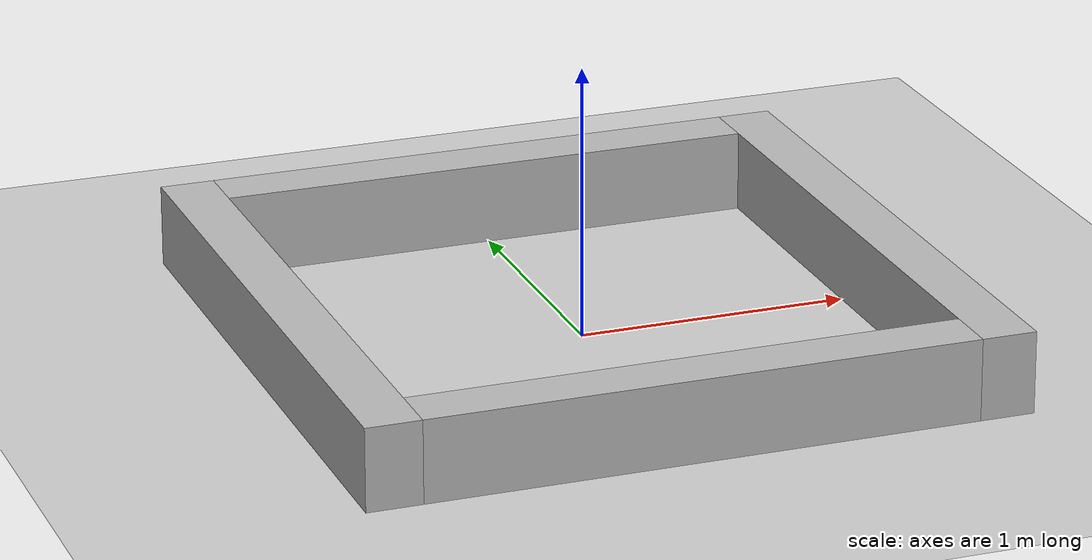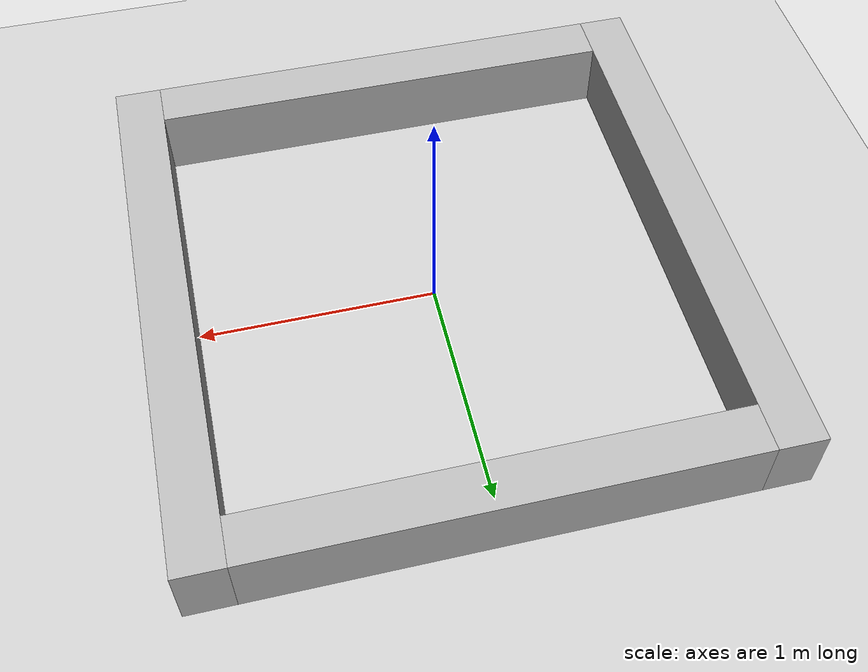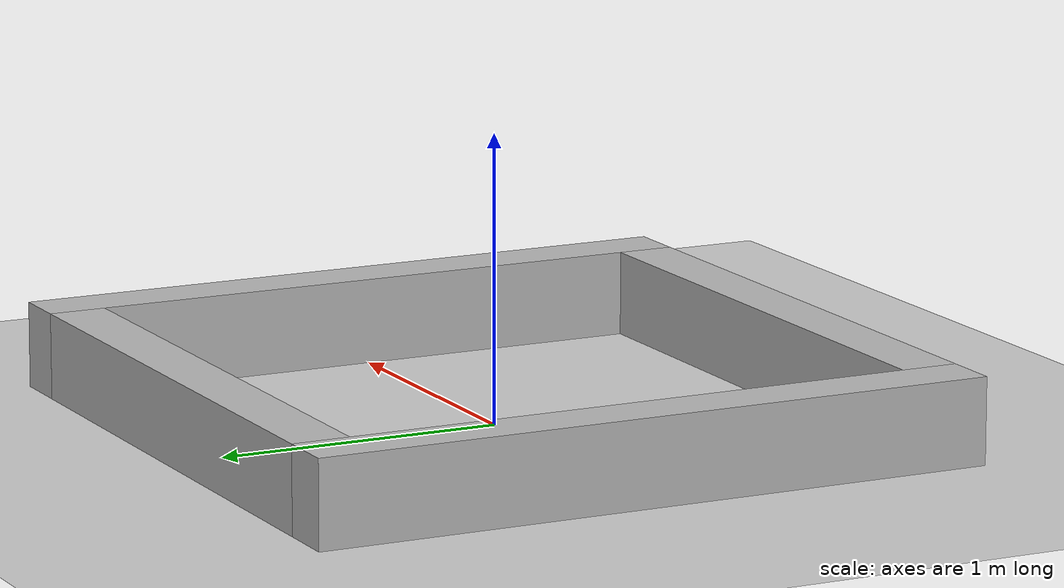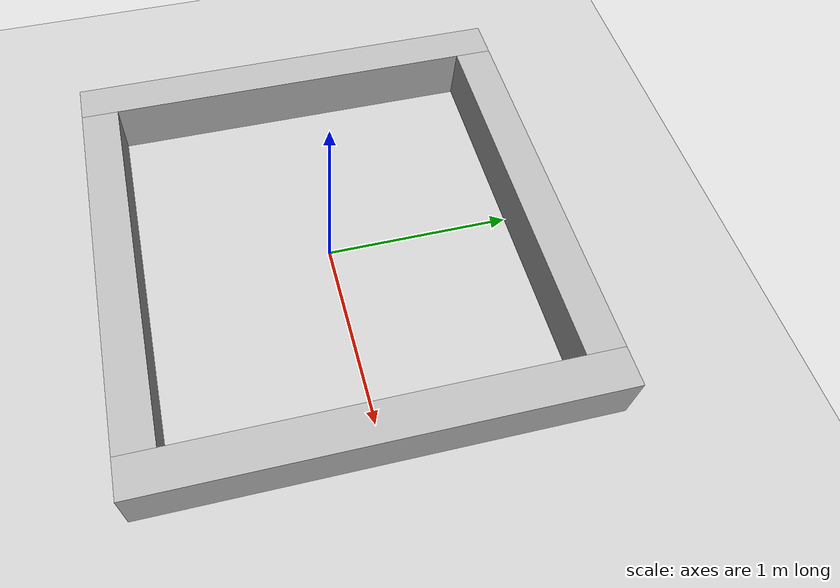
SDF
<?xml version="1.0"?>
<sdf version="1.6">
  <world name="default">

    <include>
      <uri>model://ground_plane</uri>
    </include>

    <include>
      <uri>model://sun</uri>
    </include>

    <scene>
      <shadows>false</shadows>
    </scene>

    <gui fullscreen='0'>
      <camera name='user_camera'>
        <pose frame=''>0.319654 -0.235002 9.29441 0 1.5138 0.009599</pose>
        <view_controller>orbit</view_controller>
        <projection_type>perspective</projection_type>
      </camera>
    </gui>

    <physics type="ode">
      <real_time_update_rate>1000.0</real_time_update_rate>
      <max_step_size>0.001</max_step_size>
      <real_time_factor>1</real_time_factor>
      <ode>
        <solver>
          <type>quick</type>
          <iters>150</iters>
          <precon_iters>0</precon_iters>
          <sor>1.400000</sor>
          <use_dynamic_moi_rescaling>1</use_dynamic_moi_rescaling>
        </solver>
        <constraints>
          <cfm>0.00001</cfm>
          <erp>0.2</erp>
          <contact_max_correcting_vel>2000.000000</contact_max_correcting_vel>
          <contact_surface_layer>0.01000</contact_surface_layer>
        </constraints>
      </ode>
    </physics>

    <model name="wall1">
      <pose>1.1 0 0.15 0 0 0</pose>
      <static>true</static>
      <link name="link">
      <visual name="visual">
        <geometry>
          <box><size>0.2 2.4 0.3</size></box>
        </geometry>
      </visual>
      <collision name="collision">
        <geometry>
          <box><size>0.2 2.4 0.3</size></box>
        </geometry>
      </collision>
      </link>
    </model>
    <model name="wall2">
      <pose>-1.1 0 0.15 0 0 0</pose>
      <static>true</static>
      <link name="link">
      <visual name="visual">
        <geometry>
          <box><size>0.2 2.4 0.3</size></box>
        </geometry>
      </visual>
      <collision name="collision">
        <geometry>
          <box><size>0.2 2.4 0.3</size></box>
        </geometry>
      </collision>
      </link>
    </model>
    <model name="wall3">
      <pose>0 1.1 0.15 0 0 0</pose>
      <static>true</static>
      <link name="link">
      <visual name="visual">
        <geometry>
          <box><size>2 0.2 0.3</size></box>
        </geometry>
      </visual>
      <collision name="collision">
        <geometry>
          <box><size>2 0.2 0.3</size></box>
        </geometry>
      </collision>
      </link>
    </model>
    <model name="wall4">
      <pose>0 -1.1 0.15 0 0 0</pose>
      <static>true</static>
      <link name="link">
      <visual name="visual">
        <geometry>
          <box><size>2 0.2 0.3</size></box>
        </geometry>
      </visual>
      <collision name="collision">
        <geometry>
          <box><size>2 0.2 0.3</size></box>
        </geometry>
      </collision>
      </link>
    </model>
  </world>
</sdf>
